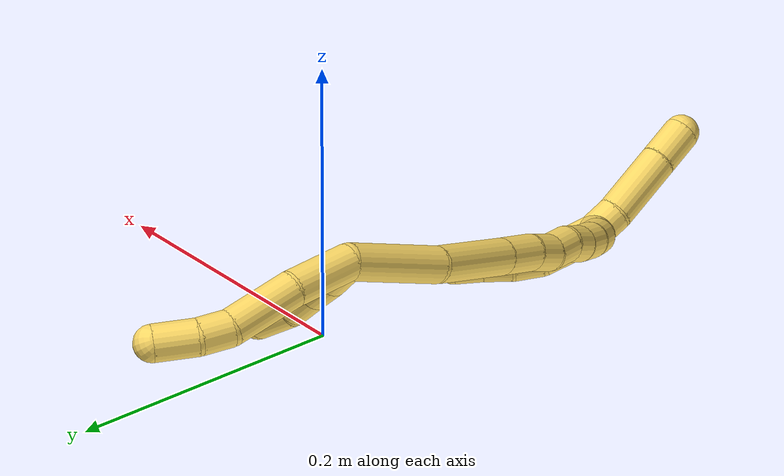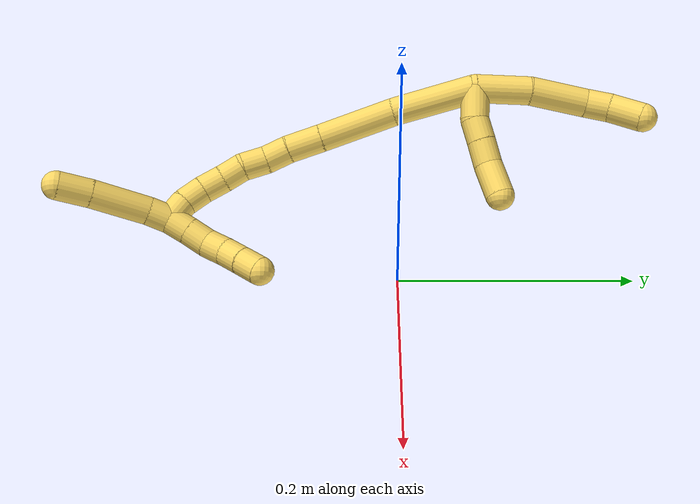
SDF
<sdf version="1.7">
 <world name="default">
  <model name="5">
   <static>0</static>
   <link name="5">
    <collision name="collision-cylinder-e_1_2_8">
     <pose>-0.014931 0.018661 0.000937 -1.52065 -0.674189 0.64348</pose>
     <geometry><cylinder><radius>0.0125</radius><length>0.047835</length></cylinder></geometry>
     <surface>
      <friction><ode><mu>1.16</mu><mu2>1.16</mu2><slip1>0</slip1><slip2>0</slip2></ode></friction>
      <contact><ode><kp>1e+06</kp><kd>1</kd><max_vel>0</max_vel><min_depth>0.001</min_depth></ode></contact>
     </surface>
    </collision>
    <visual name="visual-cylinder-e_1_2_8">
     <pose>-0.014931 0.018661 0.000937 -1.52065 -0.674189 0.64348</pose>
     <geometry><cylinder><radius>0.0125</radius><length>0.047835</length></cylinder></geometry>
     <material><ambient>1 0.858824 0.4 1</ambient></material>
    </visual>
    <collision name="collision-cylinder-e_2_8_9">
     <pose>-0.043393 0.058383 0.006343 -1.36166 -0.561109 0.45862</pose>
     <geometry><cylinder><radius>0.0125</radius><length>0.050858</length></cylinder></geometry>
     <surface>
      <friction><ode><mu>1.16</mu><mu2>1.16</mu2><slip1>0</slip1><slip2>0</slip2></ode></friction>
      <contact><ode><kp>1e+06</kp><kd>1</kd><max_vel>0</max_vel><min_depth>0.001</min_depth></ode></contact>
     </surface>
    </collision>
    <visual name="visual-cylinder-e_2_8_9">
     <pose>-0.043393 0.058383 0.006343 -1.36166 -0.561109 0.45862</pose>
     <geometry><cylinder><radius>0.0125</radius><length>0.050858</length></cylinder></geometry>
     <material><ambient>1 0.858824 0.4 1</ambient></material>
    </visual>
    <collision name="collision-cylinder-e_3_9_10">
     <pose>-0.064778 0.086362 0.014033 -1.13516 -0.799707 0.526391</pose>
     <geometry><cylinder><radius>0.0125</radius><length>0.021901</length></cylinder></geometry>
     <surface>
      <friction><ode><mu>1.16</mu><mu2>1.16</mu2><slip1>0</slip1><slip2>0</slip2></ode></friction>
      <contact><ode><kp>1e+06</kp><kd>1</kd><max_vel>0</max_vel><min_depth>0.001</min_depth></ode></contact>
     </surface>
    </collision>
    <visual name="visual-cylinder-e_3_9_10">
     <pose>-0.064778 0.086362 0.014033 -1.13516 -0.799707 0.526391</pose>
     <geometry><cylinder><radius>0.0125</radius><length>0.021901</length></cylinder></geometry>
     <material><ambient>1 0.858824 0.4 1</ambient></material>
    </visual>
    <collision name="collision-cylinder-e_4_10_6">
     <pose>-0.083845 0.100054 0.023928 -0.792746 -0.867502 0.382946</pose>
     <geometry><cylinder><radius>0.0125</radius><length>0.029406</length></cylinder></geometry>
     <surface>
      <friction><ode><mu>1.16</mu><mu2>1.16</mu2><slip1>0</slip1><slip2>0</slip2></ode></friction>
      <contact><ode><kp>1e+06</kp><kd>1</kd><max_vel>0</max_vel><min_depth>0.001</min_depth></ode></contact>
     </surface>
    </collision>
    <visual name="visual-cylinder-e_4_10_6">
     <pose>-0.083845 0.100054 0.023928 -0.792746 -0.867502 0.382946</pose>
     <geometry><cylinder><radius>0.0125</radius><length>0.029406</length></cylinder></geometry>
     <material><ambient>1 0.858824 0.4 1</ambient></material>
    </visual>
    <collision name="collision-cylinder-e_1_2_11">
     <pose>0.002285 0.001075 0.013876 -0.077329 0.16276 -0.00631</pose>
     <geometry><cylinder><radius>0.0125</radius><length>0.028208</length></cylinder></geometry>
     <surface>
      <friction><ode><mu>1.16</mu><mu2>1.16</mu2><slip1>0</slip1><slip2>0</slip2></ode></friction>
      <contact><ode><kp>1e+06</kp><kd>1</kd><max_vel>0</max_vel><min_depth>0.001</min_depth></ode></contact>
     </surface>
    </collision>
    <visual name="visual-cylinder-e_1_2_11">
     <pose>0.002285 0.001075 0.013876 -0.077329 0.16276 -0.00631</pose>
     <geometry><cylinder><radius>0.0125</radius><length>0.028208</length></cylinder></geometry>
     <material><ambient>1 0.858824 0.4 1</ambient></material>
    </visual>
    <collision name="collision-cylinder-e_2_11_12">
     <pose>0.004065 0.005015 0.037363 -0.28973 -0.050367 0.007349</pose>
     <geometry><cylinder><radius>0.0125</radius><length>0.020083</length></cylinder></geometry>
     <surface>
      <friction><ode><mu>1.16</mu><mu2>1.16</mu2><slip1>0</slip1><slip2>0</slip2></ode></friction>
      <contact><ode><kp>1e+06</kp><kd>1</kd><max_vel>0</max_vel><min_depth>0.001</min_depth></ode></contact>
     </surface>
    </collision>
    <visual name="visual-cylinder-e_2_11_12">
     <pose>0.004065 0.005015 0.037363 -0.28973 -0.050367 0.007349</pose>
     <geometry><cylinder><radius>0.0125</radius><length>0.020083</length></cylinder></geometry>
     <material><ambient>1 0.858824 0.4 1</ambient></material>
    </visual>
    <collision name="collision-cylinder-e_3_12_13">
     <pose>0.003297 0.010989 0.057332 -0.291555 -0.024315 0.00357</pose>
     <geometry><cylinder><radius>0.0125</radius><length>0.021636</length></cylinder></geometry>
     <surface>
      <friction><ode><mu>1.16</mu><mu2>1.16</mu2><slip1>0</slip1><slip2>0</slip2></ode></friction>
      <contact><ode><kp>1e+06</kp><kd>1</kd><max_vel>0</max_vel><min_depth>0.001</min_depth></ode></contact>
     </surface>
    </collision>
    <visual name="visual-cylinder-e_3_12_13">
     <pose>0.003297 0.010989 0.057332 -0.291555 -0.024315 0.00357</pose>
     <geometry><cylinder><radius>0.0125</radius><length>0.021636</length></cylinder></geometry>
     <material><ambient>1 0.858824 0.4 1</ambient></material>
    </visual>
    <collision name="collision-cylinder-e_4_13_5">
     <pose>-0.000233 0.016668 0.082141 -0.175991 -0.218983 0.019396</pose>
     <geometry><cylinder><radius>0.0125</radius><length>0.030073</length></cylinder></geometry>
     <surface>
      <friction><ode><mu>1.16</mu><mu2>1.16</mu2><slip1>0</slip1><slip2>0</slip2></ode></friction>
      <contact><ode><kp>1e+06</kp><kd>1</kd><max_vel>0</max_vel><min_depth>0.001</min_depth></ode></contact>
     </surface>
    </collision>
    <visual name="visual-cylinder-e_4_13_5">
     <pose>-0.000233 0.016668 0.082141 -0.175991 -0.218983 0.019396</pose>
     <geometry><cylinder><radius>0.0125</radius><length>0.030073</length></cylinder></geometry>
     <material><ambient>1 0.858824 0.4 1</ambient></material>
    </visual>
    <collision name="collision-cylinder-e_1_2_14">
     <pose>0.032039 -0.018632 0.004903 1.31347 1.0294 0.822256</pose>
     <geometry><cylinder><radius>0.0125</radius><length>0.074772</length></cylinder></geometry>
     <surface>
      <friction><ode><mu>1.16</mu><mu2>1.16</mu2><slip1>0</slip1><slip2>0</slip2></ode></friction>
      <contact><ode><kp>1e+06</kp><kd>1</kd><max_vel>0</max_vel><min_depth>0.001</min_depth></ode></contact>
     </surface>
    </collision>
    <visual name="visual-cylinder-e_1_2_14">
     <pose>0.032039 -0.018632 0.004903 1.31347 1.0294 0.822256</pose>
     <geometry><cylinder><radius>0.0125</radius><length>0.074772</length></cylinder></geometry>
     <material><ambient>1 0.858824 0.4 1</ambient></material>
    </visual>
    <collision name="collision-cylinder-e_2_14_15">
     <pose>0.089634 -0.057917 0.019414 1.13537 0.842786 0.556849</pose>
     <geometry><cylinder><radius>0.0125</radius><length>0.068467</length></cylinder></geometry>
     <surface>
      <friction><ode><mu>1.16</mu><mu2>1.16</mu2><slip1>0</slip1><slip2>0</slip2></ode></friction>
      <contact><ode><kp>1e+06</kp><kd>1</kd><max_vel>0</max_vel><min_depth>0.001</min_depth></ode></contact>
     </surface>
    </collision>
    <visual name="visual-cylinder-e_2_14_15">
     <pose>0.089634 -0.057917 0.019414 1.13537 0.842786 0.556849</pose>
     <geometry><cylinder><radius>0.0125</radius><length>0.068467</length></cylinder></geometry>
     <material><ambient>1 0.858824 0.4 1</ambient></material>
    </visual>
    <collision name="collision-cylinder-e_3_15_16">
     <pose>0.126666 -0.088059 0.033179 1.15785 0.836501 0.56548</pose>
     <geometry><cylinder><radius>0.0125</radius><length>0.030921</length></cylinder></geometry>
     <surface>
      <friction><ode><mu>1.16</mu><mu2>1.16</mu2><slip1>0</slip1><slip2>0</slip2></ode></friction>
      <contact><ode><kp>1e+06</kp><kd>1</kd><max_vel>0</max_vel><min_depth>0.001</min_depth></ode></contact>
     </surface>
    </collision>
    <visual name="visual-cylinder-e_3_15_16">
     <pose>0.126666 -0.088059 0.033179 1.15785 0.836501 0.56548</pose>
     <geometry><cylinder><radius>0.0125</radius><length>0.030921</length></cylinder></geometry>
     <material><ambient>1 0.858824 0.4 1</ambient></material>
    </visual>
    <collision name="collision-cylinder-e_4_16_17">
     <pose>0.146617 -0.103461 0.041207 0.991262 0.875669 0.495779</pose>
     <geometry><cylinder><radius>0.0125</radius><length>0.02207</length></cylinder></geometry>
     <surface>
      <friction><ode><mu>1.16</mu><mu2>1.16</mu2><slip1>0</slip1><slip2>0</slip2></ode></friction>
      <contact><ode><kp>1e+06</kp><kd>1</kd><max_vel>0</max_vel><min_depth>0.001</min_depth></ode></contact>
     </surface>
    </collision>
    <visual name="visual-cylinder-e_4_16_17">
     <pose>0.146617 -0.103461 0.041207 0.991262 0.875669 0.495779</pose>
     <geometry><cylinder><radius>0.0125</radius><length>0.02207</length></cylinder></geometry>
     <material><ambient>1 0.858824 0.4 1</ambient></material>
    </visual>
    <collision name="collision-cylinder-e_5_17_18">
     <pose>0.161649 -0.11762 0.04864 1.16299 0.630636 0.422435</pose>
     <geometry><cylinder><radius>0.0125</radius><length>0.022242</length></cylinder></geometry>
     <surface>
      <friction><ode><mu>1.16</mu><mu2>1.16</mu2><slip1>0</slip1><slip2>0</slip2></ode></friction>
      <contact><ode><kp>1e+06</kp><kd>1</kd><max_vel>0</max_vel><min_depth>0.001</min_depth></ode></contact>
     </surface>
    </collision>
    <visual name="visual-cylinder-e_5_17_18">
     <pose>0.161649 -0.11762 0.04864 1.16299 0.630636 0.422435</pose>
     <geometry><cylinder><radius>0.0125</radius><length>0.022242</length></cylinder></geometry>
     <material><ambient>1 0.858824 0.4 1</ambient></material>
    </visual>
    <collision name="collision-cylinder-e_6_18_19">
     <pose>0.175105 -0.13132 0.057005 0.84887 0.759355 0.356819</pose>
     <geometry><cylinder><radius>0.0125</radius><length>0.020042</length></cylinder></geometry>
     <surface>
      <friction><ode><mu>1.16</mu><mu2>1.16</mu2><slip1>0</slip1><slip2>0</slip2></ode></friction>
      <contact><ode><kp>1e+06</kp><kd>1</kd><max_vel>0</max_vel><min_depth>0.001</min_depth></ode></contact>
     </surface>
    </collision>
    <visual name="visual-cylinder-e_6_18_19">
     <pose>0.175105 -0.13132 0.057005 0.84887 0.759355 0.356819</pose>
     <geometry><cylinder><radius>0.0125</radius><length>0.020042</length></cylinder></geometry>
     <material><ambient>1 0.858824 0.4 1</ambient></material>
    </visual>
    <collision name="collision-cylinder-e_7_19_20">
     <pose>0.188186 -0.143312 0.066836 0.915105 0.643215 0.325215</pose>
     <geometry><cylinder><radius>0.0125</radius><length>0.020612</length></cylinder></geometry>
     <surface>
      <friction><ode><mu>1.16</mu><mu2>1.16</mu2><slip1>0</slip1><slip2>0</slip2></ode></friction>
      <contact><ode><kp>1e+06</kp><kd>1</kd><max_vel>0</max_vel><min_depth>0.001</min_depth></ode></contact>
     </surface>
    </collision>
    <visual name="visual-cylinder-e_7_19_20">
     <pose>0.188186 -0.143312 0.066836 0.915105 0.643215 0.325215</pose>
     <geometry><cylinder><radius>0.0125</radius><length>0.020612</length></cylinder></geometry>
     <material><ambient>1 0.858824 0.4 1</ambient></material>
    </visual>
    <collision name="collision-cylinder-e_8_20_21">
     <pose>0.199314 -0.156186 0.078035 0.798759 0.50993 0.219129</pose>
     <geometry><cylinder><radius>0.0125</radius><length>0.020271</length></cylinder></geometry>
     <surface>
      <friction><ode><mu>1.16</mu><mu2>1.16</mu2><slip1>0</slip1><slip2>0</slip2></ode></friction>
      <contact><ode><kp>1e+06</kp><kd>1</kd><max_vel>0</max_vel><min_depth>0.001</min_depth></ode></contact>
     </surface>
    </collision>
    <visual name="visual-cylinder-e_8_20_21">
     <pose>0.199314 -0.156186 0.078035 0.798759 0.50993 0.219129</pose>
     <geometry><cylinder><radius>0.0125</radius><length>0.020271</length></cylinder></geometry>
     <material><ambient>1 0.858824 0.4 1</ambient></material>
    </visual>
    <collision name="collision-cylinder-e_9_21_1">
     <pose>0.206817 -0.16795 0.092582 0.574795 0.250695 0.074457</pose>
     <geometry><cylinder><radius>0.0125</radius><length>0.020603</length></cylinder></geometry>
     <surface>
      <friction><ode><mu>1.16</mu><mu2>1.16</mu2><slip1>0</slip1><slip2>0</slip2></ode></friction>
      <contact><ode><kp>1e+06</kp><kd>1</kd><max_vel>0</max_vel><min_depth>0.001</min_depth></ode></contact>
     </surface>
    </collision>
    <visual name="visual-cylinder-e_9_21_1">
     <pose>0.206817 -0.16795 0.092582 0.574795 0.250695 0.074457</pose>
     <geometry><cylinder><radius>0.0125</radius><length>0.020603</length></cylinder></geometry>
     <material><ambient>1 0.858824 0.4 1</ambient></material>
    </visual>
    <collision name="collision-cylinder-e_1_1_22">
     <pose>0.212955 -0.182254 0.097898 1.9027 0.364372 0.505661</pose>
     <geometry><cylinder><radius>0.0125</radius><length>0.020101</length></cylinder></geometry>
     <surface>
      <friction><ode><mu>1.16</mu><mu2>1.16</mu2><slip1>0</slip1><slip2>0</slip2></ode></friction>
      <contact><ode><kp>1e+06</kp><kd>1</kd><max_vel>0</max_vel><min_depth>0.001</min_depth></ode></contact>
     </surface>
    </collision>
    <visual name="visual-cylinder-e_1_1_22">
     <pose>0.212955 -0.182254 0.097898 1.9027 0.364372 0.505661</pose>
     <geometry><cylinder><radius>0.0125</radius><length>0.020101</length></cylinder></geometry>
     <material><ambient>1 0.858824 0.4 1</ambient></material>
    </visual>
    <collision name="collision-cylinder-e_2_22_23">
     <pose>0.223562 -0.21521 0.090571 1.74616 0.279791 0.332811</pose>
     <geometry><cylinder><radius>0.0125</radius><length>0.050886</length></cylinder></geometry>
     <surface>
      <friction><ode><mu>1.16</mu><mu2>1.16</mu2><slip1>0</slip1><slip2>0</slip2></ode></friction>
      <contact><ode><kp>1e+06</kp><kd>1</kd><max_vel>0</max_vel><min_depth>0.001</min_depth></ode></contact>
     </surface>
    </collision>
    <visual name="visual-cylinder-e_2_22_23">
     <pose>0.223562 -0.21521 0.090571 1.74616 0.279791 0.332811</pose>
     <geometry><cylinder><radius>0.0125</radius><length>0.050886</length></cylinder></geometry>
     <material><ambient>1 0.858824 0.4 1</ambient></material>
    </visual>
    <collision name="collision-cylinder-e_3_23_4">
     <pose>0.234824 -0.253069 0.08469 1.68746 0.296274 0.332386</pose>
     <geometry><cylinder><radius>0.0125</radius><length>0.029013</length></cylinder></geometry>
     <surface>
      <friction><ode><mu>1.16</mu><mu2>1.16</mu2><slip1>0</slip1><slip2>0</slip2></ode></friction>
      <contact><ode><kp>1e+06</kp><kd>1</kd><max_vel>0</max_vel><min_depth>0.001</min_depth></ode></contact>
     </surface>
    </collision>
    <visual name="visual-cylinder-e_3_23_4">
     <pose>0.234824 -0.253069 0.08469 1.68746 0.296274 0.332386</pose>
     <geometry><cylinder><radius>0.0125</radius><length>0.029013</length></cylinder></geometry>
     <material><ambient>1 0.858824 0.4 1</ambient></material>
    </visual>
    <collision name="collision-cylinder-e_1_1_24">
     <pose>0.20423 -0.166634 0.106259 -0.904345 -0.540183 0.267355</pose>
     <geometry><cylinder><radius>0.0125</radius><length>0.02</length></cylinder></geometry>
     <surface>
      <friction><ode><mu>1.16</mu><mu2>1.16</mu2><slip1>0</slip1><slip2>0</slip2></ode></friction>
      <contact><ode><kp>1e+06</kp><kd>1</kd><max_vel>0</max_vel><min_depth>0.001</min_depth></ode></contact>
     </surface>
    </collision>
    <visual name="visual-cylinder-e_1_1_24">
     <pose>0.20423 -0.166634 0.106259 -0.904345 -0.540183 0.267355</pose>
     <geometry><cylinder><radius>0.0125</radius><length>0.02</length></cylinder></geometry>
     <material><ambient>1 0.858824 0.4 1</ambient></material>
    </visual>
    <collision name="collision-cylinder-e_2_24_25">
     <pose>0.193976 -0.153437 0.117235 -0.849857 -0.536452 0.247466</pose>
     <geometry><cylinder><radius>0.0125</radius><length>0.02</length></cylinder></geometry>
     <surface>
      <friction><ode><mu>1.16</mu><mu2>1.16</mu2><slip1>0</slip1><slip2>0</slip2></ode></friction>
      <contact><ode><kp>1e+06</kp><kd>1</kd><max_vel>0</max_vel><min_depth>0.001</min_depth></ode></contact>
     </surface>
    </collision>
    <visual name="visual-cylinder-e_2_24_25">
     <pose>0.193976 -0.153437 0.117235 -0.849857 -0.536452 0.247466</pose>
     <geometry><cylinder><radius>0.0125</radius><length>0.02</length></cylinder></geometry>
     <material><ambient>1 0.858824 0.4 1</ambient></material>
    </visual>
    <collision name="collision-cylinder-e_3_25_26">
     <pose>0.181564 -0.142288 0.127876 -0.756878 -0.818501 0.341554</pose>
     <geometry><cylinder><radius>0.0125</radius><length>0.02</length></cylinder></geometry>
     <surface>
      <friction><ode><mu>1.16</mu><mu2>1.16</mu2><slip1>0</slip1><slip2>0</slip2></ode></friction>
      <contact><ode><kp>1e+06</kp><kd>1</kd><max_vel>0</max_vel><min_depth>0.001</min_depth></ode></contact>
     </surface>
    </collision>
    <visual name="visual-cylinder-e_3_25_26">
     <pose>0.181564 -0.142288 0.127876 -0.756878 -0.818501 0.341554</pose>
     <geometry><cylinder><radius>0.0125</radius><length>0.02</length></cylinder></geometry>
     <material><ambient>1 0.858824 0.4 1</ambient></material>
    </visual>
    <collision name="collision-cylinder-e_4_26_27">
     <pose>0.166441 -0.134537 0.138271 -0.513161 -0.898196 0.251553</pose>
     <geometry><cylinder><radius>0.0125</radius><length>0.02</length></cylinder></geometry>
     <surface>
      <friction><ode><mu>1.16</mu><mu2>1.16</mu2><slip1>0</slip1><slip2>0</slip2></ode></friction>
      <contact><ode><kp>1e+06</kp><kd>1</kd><max_vel>0</max_vel><min_depth>0.001</min_depth></ode></contact>
     </surface>
    </collision>
    <visual name="visual-cylinder-e_4_26_27">
     <pose>0.166441 -0.134537 0.138271 -0.513161 -0.898196 0.251553</pose>
     <geometry><cylinder><radius>0.0125</radius><length>0.02</length></cylinder></geometry>
     <material><ambient>1 0.858824 0.4 1</ambient></material>
    </visual>
    <collision name="collision-cylinder-e_5_27_3">
     <pose>0.151089 -0.127844 0.149185 -0.585125 -0.852568 0.271887</pose>
     <geometry><cylinder><radius>0.0125</radius><length>0.02</length></cylinder></geometry>
     <surface>
      <friction><ode><mu>1.16</mu><mu2>1.16</mu2><slip1>0</slip1><slip2>0</slip2></ode></friction>
      <contact><ode><kp>1e+06</kp><kd>1</kd><max_vel>0</max_vel><min_depth>0.001</min_depth></ode></contact>
     </surface>
    </collision>
    <visual name="visual-cylinder-e_5_27_3">
     <pose>0.151089 -0.127844 0.149185 -0.585125 -0.852568 0.271887</pose>
     <geometry><cylinder><radius>0.0125</radius><length>0.02</length></cylinder></geometry>
     <material><ambient>1 0.858824 0.4 1</ambient></material>
    </visual>
    <collision name="collision-sphere-3">
     <pose>0.143559 -0.12421 0.154671 0 -0 0</pose>
     <geometry><sphere><radius>0.0125</radius></sphere></geometry>
     <surface>
      <friction><ode><mu>1.16</mu><mu2>1.16</mu2><slip1>0</slip1><slip2>0</slip2></ode></friction>
      <contact><ode><kp>1e+06</kp><kd>1</kd><max_vel>0</max_vel><min_depth>0.001</min_depth></ode></contact>
     </surface>
    </collision>
    <visual name="visual-sphere-3">
     <pose>0.143559 -0.12421 0.154671 0 -0 0</pose>
     <geometry><sphere><radius>0.0125</radius></sphere></geometry>
     <material><ambient>1 0.858824 0.4 1</ambient></material>
    </visual>
    <collision name="collision-sphere-27">
     <pose>0.158619 -0.131479 0.143699 0 -0 0</pose>
     <geometry><sphere><radius>0.0125</radius></sphere></geometry>
     <surface>
      <friction><ode><mu>1.16</mu><mu2>1.16</mu2><slip1>0</slip1><slip2>0</slip2></ode></friction>
      <contact><ode><kp>1e+06</kp><kd>1</kd><max_vel>0</max_vel><min_depth>0.001</min_depth></ode></contact>
     </surface>
    </collision>
    <visual name="visual-sphere-27">
     <pose>0.158619 -0.131479 0.143699 0 -0 0</pose>
     <geometry><sphere><radius>0.0125</radius></sphere></geometry>
     <material><ambient>1 0.858824 0.4 1</ambient></material>
    </visual>
    <collision name="collision-sphere-26">
     <pose>0.174263 -0.137596 0.132844 0 -0 0</pose>
     <geometry><sphere><radius>0.0125</radius></sphere></geometry>
     <surface>
      <friction><ode><mu>1.16</mu><mu2>1.16</mu2><slip1>0</slip1><slip2>0</slip2></ode></friction>
      <contact><ode><kp>1e+06</kp><kd>1</kd><max_vel>0</max_vel><min_depth>0.001</min_depth></ode></contact>
     </surface>
    </collision>
    <visual name="visual-sphere-26">
     <pose>0.174263 -0.137596 0.132844 0 -0 0</pose>
     <geometry><sphere><radius>0.0125</radius></sphere></geometry>
     <material><ambient>1 0.858824 0.4 1</ambient></material>
    </visual>
    <collision name="collision-sphere-25">
     <pose>0.188865 -0.14698 0.122908 0 -0 0</pose>
     <geometry><sphere><radius>0.0125</radius></sphere></geometry>
     <surface>
      <friction><ode><mu>1.16</mu><mu2>1.16</mu2><slip1>0</slip1><slip2>0</slip2></ode></friction>
      <contact><ode><kp>1e+06</kp><kd>1</kd><max_vel>0</max_vel><min_depth>0.001</min_depth></ode></contact>
     </surface>
    </collision>
    <visual name="visual-sphere-25">
     <pose>0.188865 -0.14698 0.122908 0 -0 0</pose>
     <geometry><sphere><radius>0.0125</radius></sphere></geometry>
     <material><ambient>1 0.858824 0.4 1</ambient></material>
    </visual>
    <collision name="collision-sphere-24">
     <pose>0.199087 -0.159893 0.111561 0 -0 0</pose>
     <geometry><sphere><radius>0.0125</radius></sphere></geometry>
     <surface>
      <friction><ode><mu>1.16</mu><mu2>1.16</mu2><slip1>0</slip1><slip2>0</slip2></ode></friction>
      <contact><ode><kp>1e+06</kp><kd>1</kd><max_vel>0</max_vel><min_depth>0.001</min_depth></ode></contact>
     </surface>
    </collision>
    <visual name="visual-sphere-24">
     <pose>0.199087 -0.159893 0.111561 0 -0 0</pose>
     <geometry><sphere><radius>0.0125</radius></sphere></geometry>
     <material><ambient>1 0.858824 0.4 1</ambient></material>
    </visual>
    <collision name="collision-sphere-4">
     <pose>0.239059 -0.266849 0.083075 0 -0 0</pose>
     <geometry><sphere><radius>0.0125</radius></sphere></geometry>
     <surface>
      <friction><ode><mu>1.16</mu><mu2>1.16</mu2><slip1>0</slip1><slip2>0</slip2></ode></friction>
      <contact><ode><kp>1e+06</kp><kd>1</kd><max_vel>0</max_vel><min_depth>0.001</min_depth></ode></contact>
     </surface>
    </collision>
    <visual name="visual-sphere-4">
     <pose>0.239059 -0.266849 0.083075 0 -0 0</pose>
     <geometry><sphere><radius>0.0125</radius></sphere></geometry>
     <material><ambient>1 0.858824 0.4 1</ambient></material>
    </visual>
    <collision name="collision-sphere-23">
     <pose>0.230589 -0.239289 0.086305 0 -0 0</pose>
     <geometry><sphere><radius>0.0125</radius></sphere></geometry>
     <surface>
      <friction><ode><mu>1.16</mu><mu2>1.16</mu2><slip1>0</slip1><slip2>0</slip2></ode></friction>
      <contact><ode><kp>1e+06</kp><kd>1</kd><max_vel>0</max_vel><min_depth>0.001</min_depth></ode></contact>
     </surface>
    </collision>
    <visual name="visual-sphere-23">
     <pose>0.230589 -0.239289 0.086305 0 -0 0</pose>
     <geometry><sphere><radius>0.0125</radius></sphere></geometry>
     <material><ambient>1 0.858824 0.4 1</ambient></material>
    </visual>
    <collision name="collision-sphere-22">
     <pose>0.216536 -0.191132 0.094838 0 -0 0</pose>
     <geometry><sphere><radius>0.0125</radius></sphere></geometry>
     <surface>
      <friction><ode><mu>1.16</mu><mu2>1.16</mu2><slip1>0</slip1><slip2>0</slip2></ode></friction>
      <contact><ode><kp>1e+06</kp><kd>1</kd><max_vel>0</max_vel><min_depth>0.001</min_depth></ode></contact>
     </surface>
    </collision>
    <visual name="visual-sphere-22">
     <pose>0.216536 -0.191132 0.094838 0 -0 0</pose>
     <geometry><sphere><radius>0.0125</radius></sphere></geometry>
     <material><ambient>1 0.858824 0.4 1</ambient></material>
    </visual>
    <collision name="collision-sphere-1">
     <pose>0.209373 -0.173375 0.100958 0 -0 0</pose>
     <geometry><sphere><radius>0.0125</radius></sphere></geometry>
     <surface>
      <friction><ode><mu>1.16</mu><mu2>1.16</mu2><slip1>0</slip1><slip2>0</slip2></ode></friction>
      <contact><ode><kp>1e+06</kp><kd>1</kd><max_vel>0</max_vel><min_depth>0.001</min_depth></ode></contact>
     </surface>
    </collision>
    <visual name="visual-sphere-1">
     <pose>0.209373 -0.173375 0.100958 0 -0 0</pose>
     <geometry><sphere><radius>0.0125</radius></sphere></geometry>
     <material><ambient>1 0.858824 0.4 1</ambient></material>
    </visual>
    <collision name="collision-sphere-21">
     <pose>0.204262 -0.162525 0.084206 0 -0 0</pose>
     <geometry><sphere><radius>0.0125</radius></sphere></geometry>
     <surface>
      <friction><ode><mu>1.16</mu><mu2>1.16</mu2><slip1>0</slip1><slip2>0</slip2></ode></friction>
      <contact><ode><kp>1e+06</kp><kd>1</kd><max_vel>0</max_vel><min_depth>0.001</min_depth></ode></contact>
     </surface>
    </collision>
    <visual name="visual-sphere-21">
     <pose>0.204262 -0.162525 0.084206 0 -0 0</pose>
     <geometry><sphere><radius>0.0125</radius></sphere></geometry>
     <material><ambient>1 0.858824 0.4 1</ambient></material>
    </visual>
    <collision name="collision-sphere-11">
     <pose>0.004571 0.00215 0.027752 0 -0 0</pose>
     <geometry><sphere><radius>0.0125</radius></sphere></geometry>
     <surface>
      <friction><ode><mu>1.16</mu><mu2>1.16</mu2><slip1>0</slip1><slip2>0</slip2></ode></friction>
      <contact><ode><kp>1e+06</kp><kd>1</kd><max_vel>0</max_vel><min_depth>0.001</min_depth></ode></contact>
     </surface>
    </collision>
    <visual name="visual-sphere-11">
     <pose>0.004571 0.00215 0.027752 0 -0 0</pose>
     <geometry><sphere><radius>0.0125</radius></sphere></geometry>
     <material><ambient>1 0.858824 0.4 1</ambient></material>
    </visual>
    <collision name="collision-sphere-6">
     <pose>-0.095059 0.106828 0.030602 0 -0 0</pose>
     <geometry><sphere><radius>0.0125</radius></sphere></geometry>
     <surface>
      <friction><ode><mu>1.16</mu><mu2>1.16</mu2><slip1>0</slip1><slip2>0</slip2></ode></friction>
      <contact><ode><kp>1e+06</kp><kd>1</kd><max_vel>0</max_vel><min_depth>0.001</min_depth></ode></contact>
     </surface>
    </collision>
    <visual name="visual-sphere-6">
     <pose>-0.095059 0.106828 0.030602 0 -0 0</pose>
     <geometry><sphere><radius>0.0125</radius></sphere></geometry>
     <material><ambient>1 0.858824 0.4 1</ambient></material>
    </visual>
    <collision name="collision-sphere-10">
     <pose>-0.072631 0.093281 0.017254 0 -0 0</pose>
     <geometry><sphere><radius>0.0125</radius></sphere></geometry>
     <surface>
      <friction><ode><mu>1.16</mu><mu2>1.16</mu2><slip1>0</slip1><slip2>0</slip2></ode></friction>
      <contact><ode><kp>1e+06</kp><kd>1</kd><max_vel>0</max_vel><min_depth>0.001</min_depth></ode></contact>
     </surface>
    </collision>
    <visual name="visual-sphere-10">
     <pose>-0.072631 0.093281 0.017254 0 -0 0</pose>
     <geometry><sphere><radius>0.0125</radius></sphere></geometry>
     <material><ambient>1 0.858824 0.4 1</ambient></material>
    </visual>
    <collision name="collision-sphere-9">
     <pose>-0.056924 0.079444 0.010813 0 -0 0</pose>
     <geometry><sphere><radius>0.0125</radius></sphere></geometry>
     <surface>
      <friction><ode><mu>1.16</mu><mu2>1.16</mu2><slip1>0</slip1><slip2>0</slip2></ode></friction>
      <contact><ode><kp>1e+06</kp><kd>1</kd><max_vel>0</max_vel><min_depth>0.001</min_depth></ode></contact>
     </surface>
    </collision>
    <visual name="visual-sphere-9">
     <pose>-0.056924 0.079444 0.010813 0 -0 0</pose>
     <geometry><sphere><radius>0.0125</radius></sphere></geometry>
     <material><ambient>1 0.858824 0.4 1</ambient></material>
    </visual>
    <collision name="collision-sphere-2">
     <geometry><sphere><radius>0.0125</radius></sphere></geometry>
     <surface>
      <friction><ode><mu>1.16</mu><mu2>1.16</mu2><slip1>0</slip1><slip2>0</slip2></ode></friction>
      <contact><ode><kp>1e+06</kp><kd>1</kd><max_vel>0</max_vel><min_depth>0.001</min_depth></ode></contact>
     </surface>
    </collision>
    <visual name="visual-sphere-2">
     <geometry><sphere><radius>0.0125</radius></sphere></geometry>
     <material><ambient>1 0.858824 0.4 1</ambient></material>
    </visual>
    <collision name="collision-sphere-19">
     <pose>0.182004 -0.136775 0.061808 0 -0 0</pose>
     <geometry><sphere><radius>0.0125</radius></sphere></geometry>
     <surface>
      <friction><ode><mu>1.16</mu><mu2>1.16</mu2><slip1>0</slip1><slip2>0</slip2></ode></friction>
      <contact><ode><kp>1e+06</kp><kd>1</kd><max_vel>0</max_vel><min_depth>0.001</min_depth></ode></contact>
     </surface>
    </collision>
    <visual name="visual-sphere-19">
     <pose>0.182004 -0.136775 0.061808 0 -0 0</pose>
     <geometry><sphere><radius>0.0125</radius></sphere></geometry>
     <material><ambient>1 0.858824 0.4 1</ambient></material>
    </visual>
    <collision name="collision-sphere-8">
     <pose>-0.029861 0.037322 0.001873 0 -0 0</pose>
     <geometry><sphere><radius>0.0125</radius></sphere></geometry>
     <surface>
      <friction><ode><mu>1.16</mu><mu2>1.16</mu2><slip1>0</slip1><slip2>0</slip2></ode></friction>
      <contact><ode><kp>1e+06</kp><kd>1</kd><max_vel>0</max_vel><min_depth>0.001</min_depth></ode></contact>
     </surface>
    </collision>
    <visual name="visual-sphere-8">
     <pose>-0.029861 0.037322 0.001873 0 -0 0</pose>
     <geometry><sphere><radius>0.0125</radius></sphere></geometry>
     <material><ambient>1 0.858824 0.4 1</ambient></material>
    </visual>
    <collision name="collision-sphere-12">
     <pose>0.00356 0.007881 0.046974 0 -0 0</pose>
     <geometry><sphere><radius>0.0125</radius></sphere></geometry>
     <surface>
      <friction><ode><mu>1.16</mu><mu2>1.16</mu2><slip1>0</slip1><slip2>0</slip2></ode></friction>
      <contact><ode><kp>1e+06</kp><kd>1</kd><max_vel>0</max_vel><min_depth>0.001</min_depth></ode></contact>
     </surface>
    </collision>
    <visual name="visual-sphere-12">
     <pose>0.00356 0.007881 0.046974 0 -0 0</pose>
     <geometry><sphere><radius>0.0125</radius></sphere></geometry>
     <material><ambient>1 0.858824 0.4 1</ambient></material>
    </visual>
    <collision name="collision-sphere-13">
     <pose>0.003034 0.014098 0.067691 0 -0 0</pose>
     <geometry><sphere><radius>0.0125</radius></sphere></geometry>
     <surface>
      <friction><ode><mu>1.16</mu><mu2>1.16</mu2><slip1>0</slip1><slip2>0</slip2></ode></friction>
      <contact><ode><kp>1e+06</kp><kd>1</kd><max_vel>0</max_vel><min_depth>0.001</min_depth></ode></contact>
     </surface>
    </collision>
    <visual name="visual-sphere-13">
     <pose>0.003034 0.014098 0.067691 0 -0 0</pose>
     <geometry><sphere><radius>0.0125</radius></sphere></geometry>
     <material><ambient>1 0.858824 0.4 1</ambient></material>
    </visual>
    <collision name="collision-sphere-5">
     <pose>-0.003499 0.019237 0.096592 0 -0 0</pose>
     <geometry><sphere><radius>0.0125</radius></sphere></geometry>
     <surface>
      <friction><ode><mu>1.16</mu><mu2>1.16</mu2><slip1>0</slip1><slip2>0</slip2></ode></friction>
      <contact><ode><kp>1e+06</kp><kd>1</kd><max_vel>0</max_vel><min_depth>0.001</min_depth></ode></contact>
     </surface>
    </collision>
    <visual name="visual-sphere-5">
     <pose>-0.003499 0.019237 0.096592 0 -0 0</pose>
     <geometry><sphere><radius>0.0125</radius></sphere></geometry>
     <material><ambient>1 0.858824 0.4 1</ambient></material>
    </visual>
    <collision name="collision-sphere-14">
     <pose>0.064079 -0.037264 0.009806 0 -0 0</pose>
     <geometry><sphere><radius>0.0125</radius></sphere></geometry>
     <surface>
      <friction><ode><mu>1.16</mu><mu2>1.16</mu2><slip1>0</slip1><slip2>0</slip2></ode></friction>
      <contact><ode><kp>1e+06</kp><kd>1</kd><max_vel>0</max_vel><min_depth>0.001</min_depth></ode></contact>
     </surface>
    </collision>
    <visual name="visual-sphere-14">
     <pose>0.064079 -0.037264 0.009806 0 -0 0</pose>
     <geometry><sphere><radius>0.0125</radius></sphere></geometry>
     <material><ambient>1 0.858824 0.4 1</ambient></material>
    </visual>
    <collision name="collision-sphere-15">
     <pose>0.11519 -0.07857 0.029022 0 -0 0</pose>
     <geometry><sphere><radius>0.0125</radius></sphere></geometry>
     <surface>
      <friction><ode><mu>1.16</mu><mu2>1.16</mu2><slip1>0</slip1><slip2>0</slip2></ode></friction>
      <contact><ode><kp>1e+06</kp><kd>1</kd><max_vel>0</max_vel><min_depth>0.001</min_depth></ode></contact>
     </surface>
    </collision>
    <visual name="visual-sphere-15">
     <pose>0.11519 -0.07857 0.029022 0 -0 0</pose>
     <geometry><sphere><radius>0.0125</radius></sphere></geometry>
     <material><ambient>1 0.858824 0.4 1</ambient></material>
    </visual>
    <collision name="collision-sphere-16">
     <pose>0.138142 -0.097547 0.037337 0 -0 0</pose>
     <geometry><sphere><radius>0.0125</radius></sphere></geometry>
     <surface>
      <friction><ode><mu>1.16</mu><mu2>1.16</mu2><slip1>0</slip1><slip2>0</slip2></ode></friction>
      <contact><ode><kp>1e+06</kp><kd>1</kd><max_vel>0</max_vel><min_depth>0.001</min_depth></ode></contact>
     </surface>
    </collision>
    <visual name="visual-sphere-16">
     <pose>0.138142 -0.097547 0.037337 0 -0 0</pose>
     <geometry><sphere><radius>0.0125</radius></sphere></geometry>
     <material><ambient>1 0.858824 0.4 1</ambient></material>
    </visual>
    <collision name="collision-sphere-17">
     <pose>0.155091 -0.109374 0.045078 0 -0 0</pose>
     <geometry><sphere><radius>0.0125</radius></sphere></geometry>
     <surface>
      <friction><ode><mu>1.16</mu><mu2>1.16</mu2><slip1>0</slip1><slip2>0</slip2></ode></friction>
      <contact><ode><kp>1e+06</kp><kd>1</kd><max_vel>0</max_vel><min_depth>0.001</min_depth></ode></contact>
     </surface>
    </collision>
    <visual name="visual-sphere-17">
     <pose>0.155091 -0.109374 0.045078 0 -0 0</pose>
     <geometry><sphere><radius>0.0125</radius></sphere></geometry>
     <material><ambient>1 0.858824 0.4 1</ambient></material>
    </visual>
    <collision name="collision-sphere-18">
     <pose>0.168206 -0.125865 0.052202 0 -0 0</pose>
     <geometry><sphere><radius>0.0125</radius></sphere></geometry>
     <surface>
      <friction><ode><mu>1.16</mu><mu2>1.16</mu2><slip1>0</slip1><slip2>0</slip2></ode></friction>
      <contact><ode><kp>1e+06</kp><kd>1</kd><max_vel>0</max_vel><min_depth>0.001</min_depth></ode></contact>
     </surface>
    </collision>
    <visual name="visual-sphere-18">
     <pose>0.168206 -0.125865 0.052202 0 -0 0</pose>
     <geometry><sphere><radius>0.0125</radius></sphere></geometry>
     <material><ambient>1 0.858824 0.4 1</ambient></material>
    </visual>
    <collision name="collision-sphere-20">
     <pose>0.194367 -0.149848 0.071864 0 -0 0</pose>
     <geometry><sphere><radius>0.0125</radius></sphere></geometry>
     <surface>
      <friction><ode><mu>1.16</mu><mu2>1.16</mu2><slip1>0</slip1><slip2>0</slip2></ode></friction>
      <contact><ode><kp>1e+06</kp><kd>1</kd><max_vel>0</max_vel><min_depth>0.001</min_depth></ode></contact>
     </surface>
    </collision>
    <visual name="visual-sphere-20">
     <pose>0.194367 -0.149848 0.071864 0 -0 0</pose>
     <geometry><sphere><radius>0.0125</radius></sphere></geometry>
     <material><ambient>1 0.858824 0.4 1</ambient></material>
    </visual>
    <inertial>
     <pose>0.091721 -0.069439 0.051685 0 -0 0</pose>
     <mass>0.75</mass>
     <inertia><ixx>0.000142</ixx><ixy>0</ixy><ixz>0</ixz><iyy>0.000128</iyy><iyz>0</iyz><izz>1e-05</izz></inertia>
    </inertial>
   </link>
   <pose>-0.110213 0.068147 0.127008 -2.43421 0.642624 -2.1488</pose>
  </model>
 </world>
</sdf>
